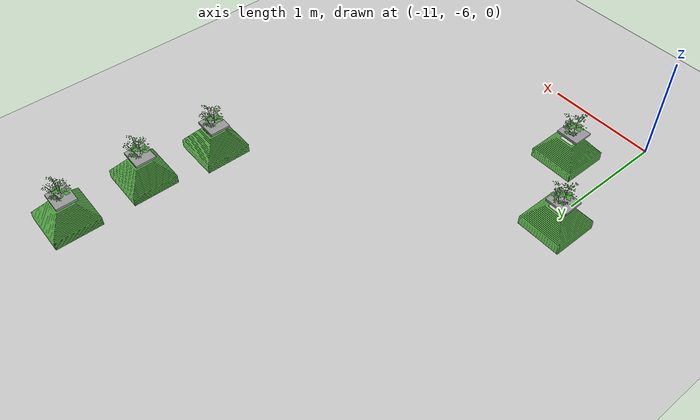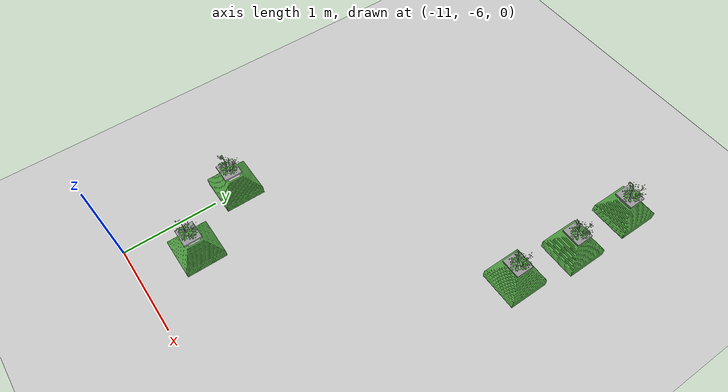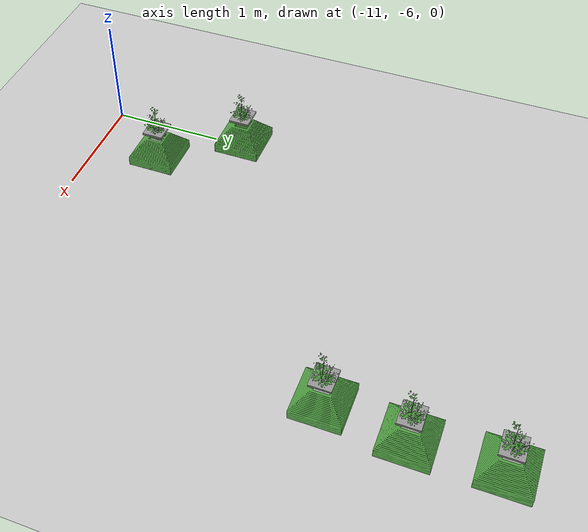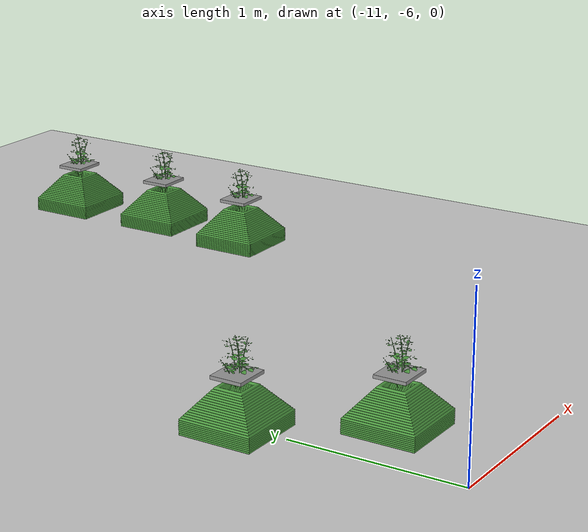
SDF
<sdf version="1.6">
 <world name="default">
  <model name="ground_plane">
   <static>1</static>
   <link name="link">
    <collision name="collision">
     <geometry><plane><normal>0 0 1</normal><size>100 100</size></plane></geometry>
     <surface><friction><ode><mu>100</mu><mu2>50</mu2></ode></friction></surface>
    </collision>
    <visual name="visual">
     <cast_shadows>0</cast_shadows>
     <geometry><plane><normal>0 0 1</normal><size>100 100</size></plane></geometry>
     <material>
      <script><uri>file://media/materials/scripts/gazebo.material</uri><name>Gazebo/Grey</name></script>
     </material>
    </visual>
   </link>
  </model>
  <model name="plant_13">
   <link name="link_0">
    <inertial>
     <mass>1</mass>
     <inertia>
      <ixx>0.0134051</ixx>
      <ixy>0</ixy>
      <ixz>0</ixz>
      <iyy>0.0134051</iyy>
      <iyz>0</iyz>
      <izz>0.0254102</izz>
     </inertia>
    </inertial>
    <gravity>0</gravity>
    <visual name="visual">
     <geometry><mesh><uri>model://square_pot/pot.stl</uri><scale>0.033 0.033 0.02</scale></mesh></geometry>
     <material>
      <lighting>1</lighting>
      <script><uri>file://media/materials/scripts/gazebo.material</uri><name>Gazebo/Grass</name></script>
      <ambient>0.3 0.3 0.3 1</ambient>
      <diffuse>0.7 0.7 0.7 1</diffuse>
      <specular>0.01 0.01 0.01 1</specular>
      <emissive>0 0 0 1</emissive>
      <shader type="vertex"><normal_map>__default__</normal_map></shader>
     </material>
    </visual>
    <collision name="collision">
     <pose>0 0 0.25 0 -0 0</pose>
     <geometry><box><size>0.4 0.4 0.4</size></box></geometry>
     <surface>
      <friction>
       <ode><mu>1</mu><mu2>1</mu2><fdir1>0 0 0</fdir1><slip1>0</slip1><slip2>0</slip2></ode>
       <torsional>
        <coefficient>1</coefficient>
        <patch_radius>0</patch_radius>
        <surface_radius>0</surface_radius>
        <use_patch_radius>1</use_patch_radius>
        <ode><slip>0</slip></ode>
       </torsional>
      </friction>
      <bounce><restitution_coefficient>0</restitution_coefficient><threshold>1e+06</threshold></bounce>
      <contact>
       <collide_without_contact>1</collide_without_contact>
       <collide_without_contact_bitmask>1</collide_without_contact_bitmask>
       <collide_bitmask>1</collide_bitmask>
       <ode>
        <soft_cfm>0</soft_cfm>
        <soft_erp>0.2</soft_erp>
        <kp>1e+13</kp>
        <kd>1</kd>
        <max_vel>0.01</max_vel>
        <min_depth>0</min_depth>
       </ode>
       <bullet>
        <split_impulse>1</split_impulse>
        <split_impulse_penetration_threshold>-0.01</split_impulse_penetration_threshold>
        <soft_cfm>0</soft_cfm>
        <soft_erp>0.2</soft_erp>
        <kp>1e+13</kp>
        <kd>1</kd>
       </bullet>
      </contact>
     </surface>
    </collision>
   </link>
   <link name="link_0_0">
    <pose>-0.011441 -0.008338 0.308474 0 -0 0</pose>
    <inertial>
     <mass>0.000736153</mass>
     <inertia>
      <ixx>2.11165e-06</ixx>
      <ixy>0</ixy>
      <ixz>0</ixz>
      <iyy>2.64382e-06</iyy>
      <iyz>0</iyz>
      <izz>4.70976e-06</izz>
     </inertia>
    </inertial>
    <visual name="visual">
     <geometry><box><size>0.206678 0.18452 0.019291</size></box></geometry>
     <material>
      <lighting>1</lighting>
      <script><uri>file://media/materials/scripts/gazebo.material</uri><name>Gazebo/Grey</name></script>
      <ambient>0.3 0.3 0.3 1</ambient>
      <diffuse>0.7 0.7 0.7 1</diffuse>
      <specular>0.01 0.01 0.01 1</specular>
      <emissive>0 0 0 1</emissive>
     </material>
    </visual>
    <collision name="collision">
     <geometry><box><size>0.206678 0.18452 0.019291</size></box></geometry>
     <surface>
      <friction>
       <ode><mu>1</mu><mu2>1</mu2><fdir1>0 0 0</fdir1><slip1>0</slip1><slip2>0</slip2></ode>
       <torsional>
        <coefficient>1</coefficient>
        <patch_radius>0</patch_radius>
        <surface_radius>0</surface_radius>
        <use_patch_radius>1</use_patch_radius>
        <ode><slip>0</slip></ode>
       </torsional>
      </friction>
      <bounce><restitution_coefficient>0</restitution_coefficient><threshold>1e+06</threshold></bounce>
      <contact>
       <collide_without_contact>0</collide_without_contact>
       <collide_without_contact_bitmask>1</collide_without_contact_bitmask>
       <collide_bitmask>1</collide_bitmask>
       <ode>
        <soft_cfm>0</soft_cfm>
        <soft_erp>0.2</soft_erp>
        <kp>1e+13</kp>
        <kd>1</kd>
        <max_vel>0.01</max_vel>
        <min_depth>0</min_depth>
       </ode>
       <bullet>
        <split_impulse>1</split_impulse>
        <split_impulse_penetration_threshold>-0.01</split_impulse_penetration_threshold>
        <soft_cfm>0</soft_cfm>
        <soft_erp>0.2</soft_erp>
        <kp>1e+13</kp>
        <kd>1</kd>
       </bullet>
      </contact>
     </surface>
    </collision>
   </link>
   <static>1</static>
   <pose>-8.49612 -1.71397 0 0 -0 0</pose>
  </model>
  <model name="plant_14">
   <link name="link_0">
    <inertial>
     <mass>1</mass>
     <inertia>
      <ixx>0.0134051</ixx>
      <ixy>0</ixy>
      <ixz>0</ixz>
      <iyy>0.0134051</iyy>
      <iyz>0</iyz>
      <izz>0.0254102</izz>
     </inertia>
    </inertial>
    <gravity>0</gravity>
    <visual name="visual">
     <geometry><mesh><uri>model://square_pot/pot.stl</uri><scale>0.033 0.033 0.02</scale></mesh></geometry>
     <material>
      <lighting>1</lighting>
      <script><uri>file://media/materials/scripts/gazebo.material</uri><name>Gazebo/Grass</name></script>
      <ambient>0.3 0.3 0.3 1</ambient>
      <diffuse>0.7 0.7 0.7 1</diffuse>
      <specular>0.01 0.01 0.01 1</specular>
      <emissive>0 0 0 1</emissive>
      <shader type="vertex"><normal_map>__default__</normal_map></shader>
     </material>
    </visual>
    <collision name="collision">
     <pose>0 0 0.25 0 -0 0</pose>
     <geometry><box><size>0.4 0.4 0.4</size></box></geometry>
     <surface>
      <friction>
       <ode><mu>1</mu><mu2>1</mu2><fdir1>0 0 0</fdir1><slip1>0</slip1><slip2>0</slip2></ode>
       <torsional>
        <coefficient>1</coefficient>
        <patch_radius>0</patch_radius>
        <surface_radius>0</surface_radius>
        <use_patch_radius>1</use_patch_radius>
        <ode><slip>0</slip></ode>
       </torsional>
      </friction>
      <bounce><restitution_coefficient>0</restitution_coefficient><threshold>1e+06</threshold></bounce>
      <contact>
       <collide_without_contact>1</collide_without_contact>
       <collide_without_contact_bitmask>1</collide_without_contact_bitmask>
       <collide_bitmask>1</collide_bitmask>
       <ode>
        <soft_cfm>0</soft_cfm>
        <soft_erp>0.2</soft_erp>
        <kp>1e+13</kp>
        <kd>1</kd>
        <max_vel>0.01</max_vel>
        <min_depth>0</min_depth>
       </ode>
       <bullet>
        <split_impulse>1</split_impulse>
        <split_impulse_penetration_threshold>-0.01</split_impulse_penetration_threshold>
        <soft_cfm>0</soft_cfm>
        <soft_erp>0.2</soft_erp>
        <kp>1e+13</kp>
        <kd>1</kd>
       </bullet>
      </contact>
     </surface>
    </collision>
   </link>
   <link name="link_0_0">
    <pose>-0.011441 -0.008338 0.308474 0 -0 0</pose>
    <inertial>
     <mass>0.000736153</mass>
     <inertia>
      <ixx>2.11165e-06</ixx>
      <ixy>0</ixy>
      <ixz>0</ixz>
      <iyy>2.64382e-06</iyy>
      <iyz>0</iyz>
      <izz>4.70976e-06</izz>
     </inertia>
    </inertial>
    <visual name="visual">
     <geometry><box><size>0.206678 0.18452 0.019291</size></box></geometry>
     <material>
      <lighting>1</lighting>
      <script><uri>file://media/materials/scripts/gazebo.material</uri><name>Gazebo/Grey</name></script>
      <ambient>0.3 0.3 0.3 1</ambient>
      <diffuse>0.7 0.7 0.7 1</diffuse>
      <specular>0.01 0.01 0.01 1</specular>
      <emissive>0 0 0 1</emissive>
     </material>
    </visual>
    <collision name="collision">
     <geometry><box><size>0.206678 0.18452 0.019291</size></box></geometry>
     <surface>
      <friction>
       <ode><mu>1</mu><mu2>1</mu2><fdir1>0 0 0</fdir1><slip1>0</slip1><slip2>0</slip2></ode>
       <torsional>
        <coefficient>1</coefficient>
        <patch_radius>0</patch_radius>
        <surface_radius>0</surface_radius>
        <use_patch_radius>1</use_patch_radius>
        <ode><slip>0</slip></ode>
       </torsional>
      </friction>
      <bounce><restitution_coefficient>0</restitution_coefficient><threshold>1e+06</threshold></bounce>
      <contact>
       <collide_without_contact>0</collide_without_contact>
       <collide_without_contact_bitmask>1</collide_without_contact_bitmask>
       <collide_bitmask>1</collide_bitmask>
       <ode>
        <soft_cfm>0</soft_cfm>
        <soft_erp>0.2</soft_erp>
        <kp>1e+13</kp>
        <kd>1</kd>
        <max_vel>0.01</max_vel>
        <min_depth>0</min_depth>
       </ode>
       <bullet>
        <split_impulse>1</split_impulse>
        <split_impulse_penetration_threshold>-0.01</split_impulse_penetration_threshold>
        <soft_cfm>0</soft_cfm>
        <soft_erp>0.2</soft_erp>
        <kp>1e+13</kp>
        <kd>1</kd>
       </bullet>
      </contact>
     </surface>
    </collision>
   </link>
   <static>1</static>
   <pose>-8.48452 -2.42223 0 0 -0 0</pose>
  </model>
  <model name="plant_15">
   <link name="link_0">
    <inertial>
     <mass>1</mass>
     <inertia>
      <ixx>0.0134051</ixx>
      <ixy>0</ixy>
      <ixz>0</ixz>
      <iyy>0.0134051</iyy>
      <iyz>0</iyz>
      <izz>0.0254102</izz>
     </inertia>
    </inertial>
    <gravity>0</gravity>
    <visual name="visual">
     <geometry><mesh><uri>model://square_pot/pot.stl</uri><scale>0.033 0.033 0.02</scale></mesh></geometry>
     <material>
      <lighting>1</lighting>
      <script><uri>file://media/materials/scripts/gazebo.material</uri><name>Gazebo/Grass</name></script>
      <ambient>0.3 0.3 0.3 1</ambient>
      <diffuse>0.7 0.7 0.7 1</diffuse>
      <specular>0.01 0.01 0.01 1</specular>
      <emissive>0 0 0 1</emissive>
      <shader type="vertex"><normal_map>__default__</normal_map></shader>
     </material>
    </visual>
    <collision name="collision">
     <pose>0 0 0.25 0 -0 0</pose>
     <geometry><box><size>0.4 0.4 0.4</size></box></geometry>
     <surface>
      <friction>
       <ode><mu>1</mu><mu2>1</mu2><fdir1>0 0 0</fdir1><slip1>0</slip1><slip2>0</slip2></ode>
       <torsional>
        <coefficient>1</coefficient>
        <patch_radius>0</patch_radius>
        <surface_radius>0</surface_radius>
        <use_patch_radius>1</use_patch_radius>
        <ode><slip>0</slip></ode>
       </torsional>
      </friction>
      <bounce><restitution_coefficient>0</restitution_coefficient><threshold>1e+06</threshold></bounce>
      <contact>
       <collide_without_contact>1</collide_without_contact>
       <collide_without_contact_bitmask>1</collide_without_contact_bitmask>
       <collide_bitmask>1</collide_bitmask>
       <ode>
        <soft_cfm>0</soft_cfm>
        <soft_erp>0.2</soft_erp>
        <kp>1e+13</kp>
        <kd>1</kd>
        <max_vel>0.01</max_vel>
        <min_depth>0</min_depth>
       </ode>
       <bullet>
        <split_impulse>1</split_impulse>
        <split_impulse_penetration_threshold>-0.01</split_impulse_penetration_threshold>
        <soft_cfm>0</soft_cfm>
        <soft_erp>0.2</soft_erp>
        <kp>1e+13</kp>
        <kd>1</kd>
       </bullet>
      </contact>
     </surface>
    </collision>
   </link>
   <link name="link_0_0">
    <pose>-0.011441 -0.008338 0.308474 0 -0 0</pose>
    <inertial>
     <mass>0.000736153</mass>
     <inertia>
      <ixx>2.11165e-06</ixx>
      <ixy>0</ixy>
      <ixz>0</ixz>
      <iyy>2.64382e-06</iyy>
      <iyz>0</iyz>
      <izz>4.70976e-06</izz>
     </inertia>
    </inertial>
    <visual name="visual">
     <geometry><box><size>0.206678 0.18452 0.019291</size></box></geometry>
     <material>
      <lighting>1</lighting>
      <script><uri>file://media/materials/scripts/gazebo.material</uri><name>Gazebo/Grey</name></script>
      <ambient>0.3 0.3 0.3 1</ambient>
      <diffuse>0.7 0.7 0.7 1</diffuse>
      <specular>0.01 0.01 0.01 1</specular>
      <emissive>0 0 0 1</emissive>
     </material>
    </visual>
    <collision name="collision">
     <geometry><box><size>0.206678 0.18452 0.019291</size></box></geometry>
     <surface>
      <friction>
       <ode><mu>1</mu><mu2>1</mu2><fdir1>0 0 0</fdir1><slip1>0</slip1><slip2>0</slip2></ode>
       <torsional>
        <coefficient>1</coefficient>
        <patch_radius>0</patch_radius>
        <surface_radius>0</surface_radius>
        <use_patch_radius>1</use_patch_radius>
        <ode><slip>0</slip></ode>
       </torsional>
      </friction>
      <bounce><restitution_coefficient>0</restitution_coefficient><threshold>1e+06</threshold></bounce>
      <contact>
       <collide_without_contact>0</collide_without_contact>
       <collide_without_contact_bitmask>1</collide_without_contact_bitmask>
       <collide_bitmask>1</collide_bitmask>
       <ode>
        <soft_cfm>0</soft_cfm>
        <soft_erp>0.2</soft_erp>
        <kp>1e+13</kp>
        <kd>1</kd>
        <max_vel>0.01</max_vel>
        <min_depth>0</min_depth>
       </ode>
       <bullet>
        <split_impulse>1</split_impulse>
        <split_impulse_penetration_threshold>-0.01</split_impulse_penetration_threshold>
        <soft_cfm>0</soft_cfm>
        <soft_erp>0.2</soft_erp>
        <kp>1e+13</kp>
        <kd>1</kd>
       </bullet>
      </contact>
     </surface>
    </collision>
   </link>
   <static>1</static>
   <pose>-8.56241 -3.09623 0 0 -0 0</pose>
  </model>
  <model name="plant_61">
   <link name="link_0">
    <inertial>
     <mass>1</mass>
     <inertia>
      <ixx>0.0134051</ixx>
      <ixy>0</ixy>
      <ixz>0</ixz>
      <iyy>0.0134051</iyy>
      <iyz>0</iyz>
      <izz>0.0254102</izz>
     </inertia>
    </inertial>
    <gravity>0</gravity>
    <visual name="visual">
     <geometry><mesh><uri>model://square_pot/pot.stl</uri><scale>0.033 0.033 0.02</scale></mesh></geometry>
     <material>
      <lighting>1</lighting>
      <script><uri>file://media/materials/scripts/gazebo.material</uri><name>Gazebo/Grass</name></script>
      <ambient>0.3 0.3 0.3 1</ambient>
      <diffuse>0.7 0.7 0.7 1</diffuse>
      <specular>0.01 0.01 0.01 1</specular>
      <emissive>0 0 0 1</emissive>
      <shader type="vertex"><normal_map>__default__</normal_map></shader>
     </material>
    </visual>
    <collision name="collision">
     <pose>0 0 0.25 0 -0 0</pose>
     <geometry><box><size>0.4 0.4 0.4</size></box></geometry>
     <surface>
      <friction>
       <ode><mu>1</mu><mu2>1</mu2><fdir1>0 0 0</fdir1><slip1>0</slip1><slip2>0</slip2></ode>
       <torsional>
        <coefficient>1</coefficient>
        <patch_radius>0</patch_radius>
        <surface_radius>0</surface_radius>
        <use_patch_radius>1</use_patch_radius>
        <ode><slip>0</slip></ode>
       </torsional>
      </friction>
      <bounce><restitution_coefficient>0</restitution_coefficient><threshold>1e+06</threshold></bounce>
      <contact>
       <collide_without_contact>1</collide_without_contact>
       <collide_without_contact_bitmask>1</collide_without_contact_bitmask>
       <collide_bitmask>1</collide_bitmask>
       <ode>
        <soft_cfm>0</soft_cfm>
        <soft_erp>0.2</soft_erp>
        <kp>1e+13</kp>
        <kd>1</kd>
        <max_vel>0.01</max_vel>
        <min_depth>0</min_depth>
       </ode>
       <bullet>
        <split_impulse>1</split_impulse>
        <split_impulse_penetration_threshold>-0.01</split_impulse_penetration_threshold>
        <soft_cfm>0</soft_cfm>
        <soft_erp>0.2</soft_erp>
        <kp>1e+13</kp>
        <kd>1</kd>
       </bullet>
      </contact>
     </surface>
    </collision>
   </link>
   <link name="link_0_0">
    <pose>-0.011441 -0.008338 0.308474 0 -0 0</pose>
    <inertial>
     <mass>0.000736153</mass>
     <inertia>
      <ixx>2.11165e-06</ixx>
      <ixy>0</ixy>
      <ixz>0</ixz>
      <iyy>2.64382e-06</iyy>
      <iyz>0</iyz>
      <izz>4.70976e-06</izz>
     </inertia>
    </inertial>
    <visual name="visual">
     <geometry><box><size>0.206678 0.18452 0.019291</size></box></geometry>
     <material>
      <lighting>1</lighting>
      <script><uri>file://media/materials/scripts/gazebo.material</uri><name>Gazebo/Grey</name></script>
      <ambient>0.3 0.3 0.3 1</ambient>
      <diffuse>0.7 0.7 0.7 1</diffuse>
      <specular>0.01 0.01 0.01 1</specular>
      <emissive>0 0 0 1</emissive>
     </material>
    </visual>
    <collision name="collision">
     <geometry><box><size>0.206678 0.18452 0.019291</size></box></geometry>
     <surface>
      <friction>
       <ode><mu>1</mu><mu2>1</mu2><fdir1>0 0 0</fdir1><slip1>0</slip1><slip2>0</slip2></ode>
       <torsional>
        <coefficient>1</coefficient>
        <patch_radius>0</patch_radius>
        <surface_radius>0</surface_radius>
        <use_patch_radius>1</use_patch_radius>
        <ode><slip>0</slip></ode>
       </torsional>
      </friction>
      <bounce><restitution_coefficient>0</restitution_coefficient><threshold>1e+06</threshold></bounce>
      <contact>
       <collide_without_contact>0</collide_without_contact>
       <collide_without_contact_bitmask>1</collide_without_contact_bitmask>
       <collide_bitmask>1</collide_bitmask>
       <ode>
        <soft_cfm>0</soft_cfm>
        <soft_erp>0.2</soft_erp>
        <kp>1e+13</kp>
        <kd>1</kd>
        <max_vel>0.01</max_vel>
        <min_depth>0</min_depth>
       </ode>
       <bullet>
        <split_impulse>1</split_impulse>
        <split_impulse_penetration_threshold>-0.01</split_impulse_penetration_threshold>
        <soft_cfm>0</soft_cfm>
        <soft_erp>0.2</soft_erp>
        <kp>1e+13</kp>
        <kd>1</kd>
       </bullet>
      </contact>
     </surface>
    </collision>
   </link>
   <static>1</static>
   <pose>-11.0437 -4.73448 0 0 -0 0</pose>
  </model>
  <model name="plant_62">
   <link name="link_0">
    <inertial>
     <mass>1</mass>
     <inertia>
      <ixx>0.0134051</ixx>
      <ixy>0</ixy>
      <ixz>0</ixz>
      <iyy>0.0134051</iyy>
      <iyz>0</iyz>
      <izz>0.0254102</izz>
     </inertia>
    </inertial>
    <gravity>0</gravity>
    <visual name="visual">
     <geometry><mesh><uri>model://square_pot/pot.stl</uri><scale>0.033 0.033 0.02</scale></mesh></geometry>
     <material>
      <lighting>1</lighting>
      <script><uri>file://media/materials/scripts/gazebo.material</uri><name>Gazebo/Grass</name></script>
      <ambient>0.3 0.3 0.3 1</ambient>
      <diffuse>0.7 0.7 0.7 1</diffuse>
      <specular>0.01 0.01 0.01 1</specular>
      <emissive>0 0 0 1</emissive>
      <shader type="vertex"><normal_map>__default__</normal_map></shader>
     </material>
    </visual>
    <collision name="collision">
     <pose>0 0 0.25 0 -0 0</pose>
     <geometry><box><size>0.4 0.4 0.4</size></box></geometry>
     <surface>
      <friction>
       <ode><mu>1</mu><mu2>1</mu2><fdir1>0 0 0</fdir1><slip1>0</slip1><slip2>0</slip2></ode>
       <torsional>
        <coefficient>1</coefficient>
        <patch_radius>0</patch_radius>
        <surface_radius>0</surface_radius>
        <use_patch_radius>1</use_patch_radius>
        <ode><slip>0</slip></ode>
       </torsional>
      </friction>
      <bounce><restitution_coefficient>0</restitution_coefficient><threshold>1e+06</threshold></bounce>
      <contact>
       <collide_without_contact>1</collide_without_contact>
       <collide_without_contact_bitmask>1</collide_without_contact_bitmask>
       <collide_bitmask>1</collide_bitmask>
       <ode>
        <soft_cfm>0</soft_cfm>
        <soft_erp>0.2</soft_erp>
        <kp>1e+13</kp>
        <kd>1</kd>
        <max_vel>0.01</max_vel>
        <min_depth>0</min_depth>
       </ode>
       <bullet>
        <split_impulse>1</split_impulse>
        <split_impulse_penetration_threshold>-0.01</split_impulse_penetration_threshold>
        <soft_cfm>0</soft_cfm>
        <soft_erp>0.2</soft_erp>
        <kp>1e+13</kp>
        <kd>1</kd>
       </bullet>
      </contact>
     </surface>
    </collision>
   </link>
   <link name="link_0_0">
    <pose>-0.011441 -0.008338 0.308474 0 -0 0</pose>
    <inertial>
     <mass>0.000736153</mass>
     <inertia>
      <ixx>2.11165e-06</ixx>
      <ixy>0</ixy>
      <ixz>0</ixz>
      <iyy>2.64382e-06</iyy>
      <iyz>0</iyz>
      <izz>4.70976e-06</izz>
     </inertia>
    </inertial>
    <visual name="visual">
     <geometry><box><size>0.206678 0.18452 0.019291</size></box></geometry>
     <material>
      <lighting>1</lighting>
      <script><uri>file://media/materials/scripts/gazebo.material</uri><name>Gazebo/Grey</name></script>
      <ambient>0.3 0.3 0.3 1</ambient>
      <diffuse>0.7 0.7 0.7 1</diffuse>
      <specular>0.01 0.01 0.01 1</specular>
      <emissive>0 0 0 1</emissive>
     </material>
    </visual>
    <collision name="collision">
     <geometry><box><size>0.206678 0.18452 0.019291</size></box></geometry>
     <surface>
      <friction>
       <ode><mu>1</mu><mu2>1</mu2><fdir1>0 0 0</fdir1><slip1>0</slip1><slip2>0</slip2></ode>
       <torsional>
        <coefficient>1</coefficient>
        <patch_radius>0</patch_radius>
        <surface_radius>0</surface_radius>
        <use_patch_radius>1</use_patch_radius>
        <ode><slip>0</slip></ode>
       </torsional>
      </friction>
      <bounce><restitution_coefficient>0</restitution_coefficient><threshold>1e+06</threshold></bounce>
      <contact>
       <collide_without_contact>0</collide_without_contact>
       <collide_without_contact_bitmask>1</collide_without_contact_bitmask>
       <collide_bitmask>1</collide_bitmask>
       <ode>
        <soft_cfm>0</soft_cfm>
        <soft_erp>0.2</soft_erp>
        <kp>1e+13</kp>
        <kd>1</kd>
        <max_vel>0.01</max_vel>
        <min_depth>0</min_depth>
       </ode>
       <bullet>
        <split_impulse>1</split_impulse>
        <split_impulse_penetration_threshold>-0.01</split_impulse_penetration_threshold>
        <soft_cfm>0</soft_cfm>
        <soft_erp>0.2</soft_erp>
        <kp>1e+13</kp>
        <kd>1</kd>
       </bullet>
      </contact>
     </surface>
    </collision>
   </link>
   <static>1</static>
   <pose>-10.5975 -5.39916 0 0 -0 0</pose>
  </model>
 </world>
</sdf>
